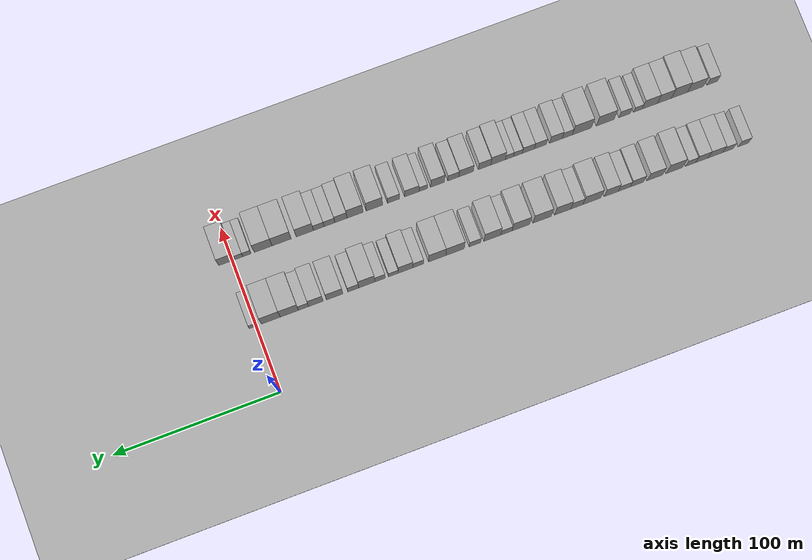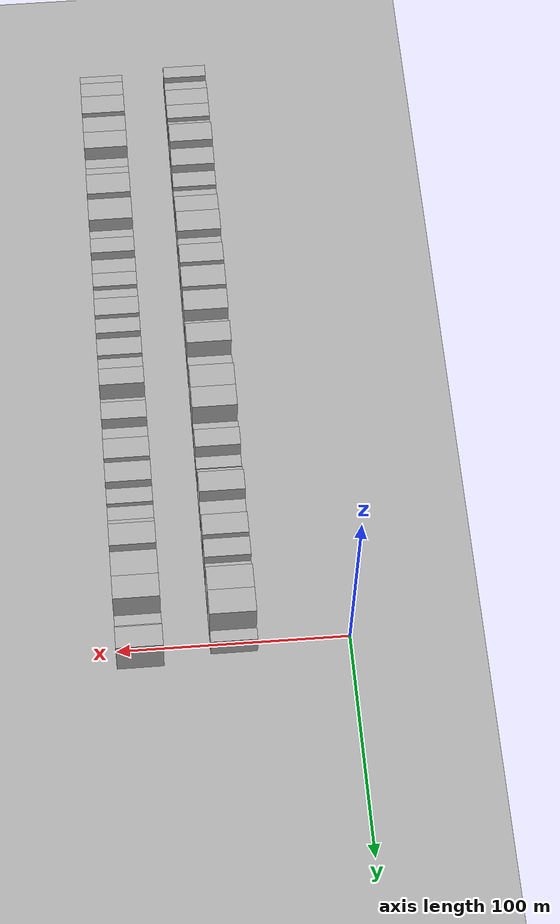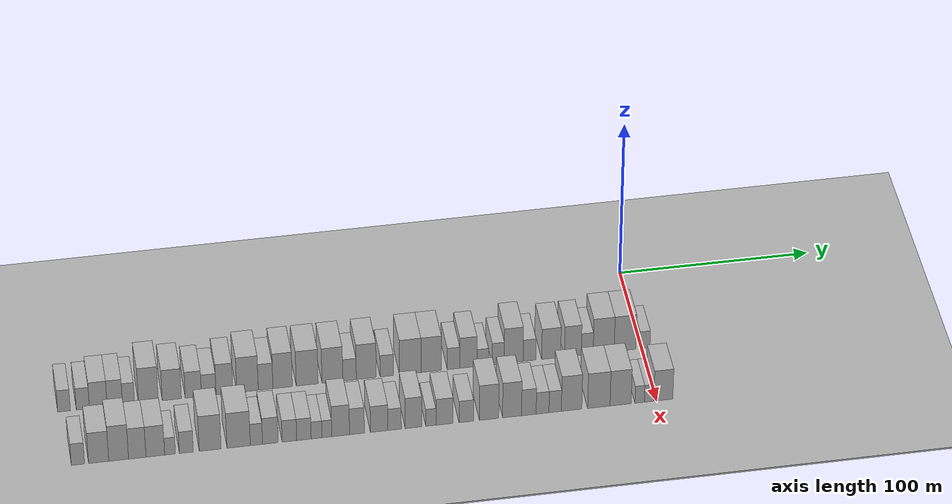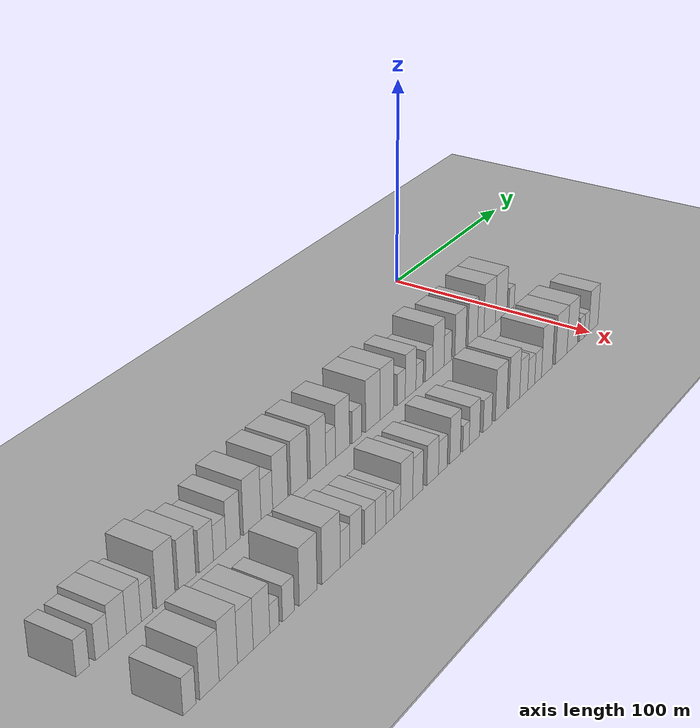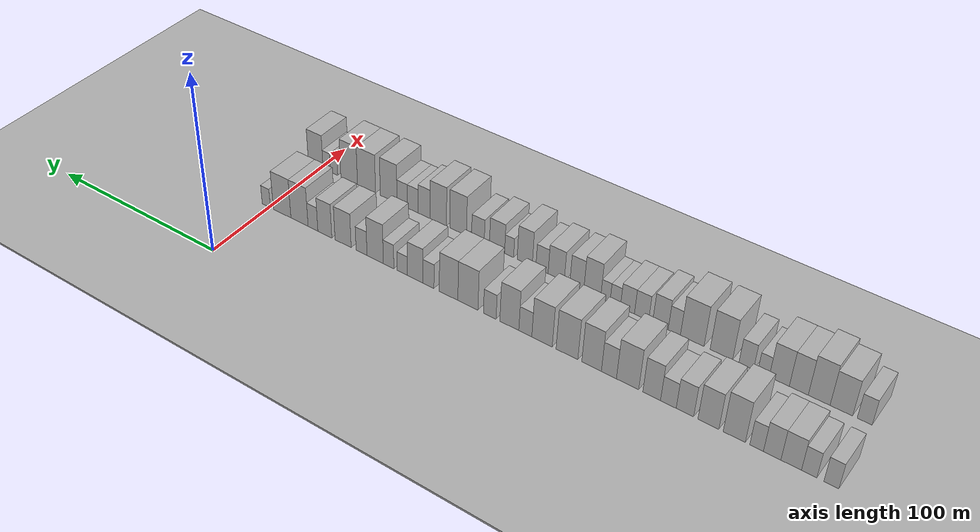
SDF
<sdf version="1.6">
 <world name="default">
  <include><name>ground_plane_1</name><uri>model://HANNAS_ground_plane</uri></include>
  <include>
   <name>ground_plane_2</name>
   <uri>model://HANNAS_ground_plane</uri>
   <pose>100 0 0  0 0 0</pose>
  </include>
  <model name="building_1">
   <static>1</static>
   <pose>50.0000 -296.7926 0 0.000000 0.000000 0.000000</pose>
   <link name="link">
    <pose>0 0 7.50 0 0 0</pose>
    <collision name="collision"><geometry><box><size>20.0000 6.4148 15.0000</size></box></geometry></collision>
    <visual name="visual">
     <cast_shadows>0</cast_shadows>
     <geometry><box><size>20.0000 6.4148 15.0000</size></box></geometry>
     <material>
      <script>
       <uri>model://HANNAS_wall/materials/scripts</uri>
       <uri>model://HANNAS_wall/materials/textures</uri>
       <name>vrc/HANNAS_wall</name>
      </script>
     </material>
    </visual>
   </link>
  </model>
  <model name="building_2">
   <static>1</static>
   <pose>50.0000 -287.2635 0 0.000000 0.000000 0.000000</pose>
   <link name="link">
    <pose>0 0 7.50 0 0 0</pose>
    <collision name="collision"><geometry><box><size>20.0000 6.6434 15.0000</size></box></geometry></collision>
    <visual name="visual">
     <cast_shadows>0</cast_shadows>
     <geometry><box><size>20.0000 6.6434 15.0000</size></box></geometry>
     <material>
      <script>
       <uri>model://HANNAS_wall/materials/scripts</uri>
       <uri>model://HANNAS_wall/materials/textures</uri>
       <name>vrc/HANNAS_wall</name>
      </script>
     </material>
    </visual>
   </link>
  </model>
  <model name="building_3">
   <static>1</static>
   <pose>50.0000 -279.4545 0 0.000000 0.000000 0.000000</pose>
   <link name="link">
    <pose>0 0 9.00 0 0 0</pose>
    <collision name="collision"><geometry><box><size>20.0000 8.9747 18.0000</size></box></geometry></collision>
    <visual name="visual">
     <cast_shadows>0</cast_shadows>
     <geometry><box><size>20.0000 8.9747 18.0000</size></box></geometry>
     <material>
      <script>
       <uri>model://HANNAS_wall/materials/scripts</uri>
       <uri>model://HANNAS_wall/materials/textures</uri>
       <name>vrc/HANNAS_wall</name>
      </script>
     </material>
    </visual>
   </link>
  </model>
  <model name="building_4">
   <static>1</static>
   <pose>50.0000 -271.0788 0 0.000000 0.000000 0.000000</pose>
   <link name="link">
    <pose>0 0 9.00 0 0 0</pose>
    <collision name="collision"><geometry><box><size>20.0000 7.7766 18.0000</size></box></geometry></collision>
    <visual name="visual">
     <cast_shadows>0</cast_shadows>
     <geometry><box><size>20.0000 7.7766 18.0000</size></box></geometry>
     <material>
      <script>
       <uri>model://HANNAS_wall/materials/scripts</uri>
       <uri>model://HANNAS_wall/materials/textures</uri>
       <name>vrc/HANNAS_wall</name>
      </script>
     </material>
    </visual>
   </link>
  </model>
  <model name="building_5">
   <static>1</static>
   <pose>50.0000 -264.1244 0 0.000000 0.000000 0.000000</pose>
   <link name="link">
    <pose>0 0 7.50 0 0 0</pose>
    <collision name="collision"><geometry><box><size>20.0000 6.1322 15.0000</size></box></geometry></collision>
    <visual name="visual">
     <cast_shadows>0</cast_shadows>
     <geometry><box><size>20.0000 6.1322 15.0000</size></box></geometry>
     <material>
      <script>
       <uri>model://HANNAS_wall/materials/scripts</uri>
       <uri>model://HANNAS_wall/materials/textures</uri>
       <name>vrc/HANNAS_wall</name>
      </script>
     </material>
    </visual>
   </link>
  </model>
  <model name="building_6">
   <static>1</static>
   <pose>50.0000 -254.0193 0 0.000000 0.000000 0.000000</pose>
   <link name="link">
    <pose>0 0 12.00 0 0 0</pose>
    <collision name="collision"><geometry><box><size>20.0000 10.0782 24.0000</size></box></geometry></collision>
    <visual name="visual">
     <cast_shadows>0</cast_shadows>
     <geometry><box><size>20.0000 10.0782 24.0000</size></box></geometry>
     <material>
      <script>
       <uri>model://HANNAS_wall/materials/scripts</uri>
       <uri>model://HANNAS_wall/materials/textures</uri>
       <name>vrc/HANNAS_wall</name>
      </script>
     </material>
    </visual>
   </link>
  </model>
  <model name="building_7">
   <static>1</static>
   <pose>50.0000 -242.1282 0 0.000000 0.000000 0.000000</pose>
   <link name="link">
    <pose>0 0 10.50 0 0 0</pose>
    <collision name="collision"><geometry><box><size>20.0000 9.7040 21.0000</size></box></geometry></collision>
    <visual name="visual">
     <cast_shadows>0</cast_shadows>
     <geometry><box><size>20.0000 9.7040 21.0000</size></box></geometry>
     <material>
      <script>
       <uri>model://HANNAS_wall/materials/scripts</uri>
       <uri>model://HANNAS_wall/materials/textures</uri>
       <name>vrc/HANNAS_wall</name>
      </script>
     </material>
    </visual>
   </link>
  </model>
  <model name="building_8">
   <static>1</static>
   <pose>50.0000 -231.1623 0 0.000000 0.000000 0.000000</pose>
   <link name="link">
    <pose>0 0 9.00 0 0 0</pose>
    <collision name="collision"><geometry><box><size>20.0000 8.2278 18.0000</size></box></geometry></collision>
    <visual name="visual">
     <cast_shadows>0</cast_shadows>
     <geometry><box><size>20.0000 8.2278 18.0000</size></box></geometry>
     <material>
      <script>
       <uri>model://HANNAS_wall/materials/scripts</uri>
       <uri>model://HANNAS_wall/materials/textures</uri>
       <name>vrc/HANNAS_wall</name>
      </script>
     </material>
    </visual>
   </link>
  </model>
  <model name="building_9">
   <static>1</static>
   <pose>50.0000 -223.3064 0 0.000000 0.000000 0.000000</pose>
   <link name="link">
    <pose>0 0 7.50 0 0 0</pose>
    <collision name="collision"><geometry><box><size>20.0000 7.4841 15.0000</size></box></geometry></collision>
    <visual name="visual">
     <cast_shadows>0</cast_shadows>
     <geometry><box><size>20.0000 7.4841 15.0000</size></box></geometry>
     <material>
      <script>
       <uri>model://HANNAS_wall/materials/scripts</uri>
       <uri>model://HANNAS_wall/materials/textures</uri>
       <name>vrc/HANNAS_wall</name>
      </script>
     </material>
    </visual>
   </link>
  </model>
  <model name="building_10">
   <static>1</static>
   <pose>50.0000 -215.2852 0 0.000000 0.000000 0.000000</pose>
   <link name="link">
    <pose>0 0 10.50 0 0 0</pose>
    <collision name="collision"><geometry><box><size>20.0000 8.5582 21.0000</size></box></geometry></collision>
    <visual name="visual">
     <cast_shadows>0</cast_shadows>
     <geometry><box><size>20.0000 8.5582 21.0000</size></box></geometry>
     <material>
      <script>
       <uri>model://HANNAS_wall/materials/scripts</uri>
       <uri>model://HANNAS_wall/materials/textures</uri>
       <name>vrc/HANNAS_wall</name>
      </script>
     </material>
    </visual>
   </link>
  </model>
  <model name="building_11">
   <static>1</static>
   <pose>50.0000 -203.5275 0 0.000000 0.000000 0.000000</pose>
   <link name="link">
    <pose>0 0 12.00 0 0 0</pose>
    <collision name="collision"><geometry><box><size>20.0000 10.9573 24.0000</size></box></geometry></collision>
    <visual name="visual">
     <cast_shadows>0</cast_shadows>
     <geometry><box><size>20.0000 10.9573 24.0000</size></box></geometry>
     <material>
      <script>
       <uri>model://HANNAS_wall/materials/scripts</uri>
       <uri>model://HANNAS_wall/materials/textures</uri>
       <name>vrc/HANNAS_wall</name>
      </script>
     </material>
    </visual>
   </link>
  </model>
  <model name="building_12">
   <static>1</static>
   <pose>50.0000 -194.2931 0 0.000000 0.000000 0.000000</pose>
   <link name="link">
    <pose>0 0 9.00 0 0 0</pose>
    <collision name="collision"><geometry><box><size>20.0000 7.5116 18.0000</size></box></geometry></collision>
    <visual name="visual">
     <cast_shadows>0</cast_shadows>
     <geometry><box><size>20.0000 7.5116 18.0000</size></box></geometry>
     <material>
      <script>
       <uri>model://HANNAS_wall/materials/scripts</uri>
       <uri>model://HANNAS_wall/materials/textures</uri>
       <name>vrc/HANNAS_wall</name>
      </script>
     </material>
    </visual>
   </link>
  </model>
  <model name="building_13">
   <static>1</static>
   <pose>50.0000 -185.5815 0 0.000000 0.000000 0.000000</pose>
   <link name="link">
    <pose>0 0 12.00 0 0 0</pose>
    <collision name="collision"><geometry><box><size>20.0000 9.9117 24.0000</size></box></geometry></collision>
    <visual name="visual">
     <cast_shadows>0</cast_shadows>
     <geometry><box><size>20.0000 9.9117 24.0000</size></box></geometry>
     <material>
      <script>
       <uri>model://HANNAS_wall/materials/scripts</uri>
       <uri>model://HANNAS_wall/materials/textures</uri>
       <name>vrc/HANNAS_wall</name>
      </script>
     </material>
    </visual>
   </link>
  </model>
  <model name="building_14">
   <static>1</static>
   <pose>50.0000 -173.0200 0 0.000000 0.000000 0.000000</pose>
   <link name="link">
    <pose>0 0 12.00 0 0 0</pose>
    <collision name="collision"><geometry><box><size>20.0000 11.2113 24.0000</size></box></geometry></collision>
    <visual name="visual">
     <cast_shadows>0</cast_shadows>
     <geometry><box><size>20.0000 11.2113 24.0000</size></box></geometry>
     <material>
      <script>
       <uri>model://HANNAS_wall/materials/scripts</uri>
       <uri>model://HANNAS_wall/materials/textures</uri>
       <name>vrc/HANNAS_wall</name>
      </script>
     </material>
    </visual>
   </link>
  </model>
  <model name="building_15">
   <static>1</static>
   <pose>50.0000 -160.0728 0 0.000000 0.000000 0.000000</pose>
   <link name="link">
    <pose>0 0 12.00 0 0 0</pose>
    <collision name="collision"><geometry><box><size>20.0000 10.6831 24.0000</size></box></geometry></collision>
    <visual name="visual">
     <cast_shadows>0</cast_shadows>
     <geometry><box><size>20.0000 10.6831 24.0000</size></box></geometry>
     <material>
      <script>
       <uri>model://HANNAS_wall/materials/scripts</uri>
       <uri>model://HANNAS_wall/materials/textures</uri>
       <name>vrc/HANNAS_wall</name>
      </script>
     </material>
    </visual>
   </link>
  </model>
  <model name="building_16">
   <static>1</static>
   <pose>50.0000 -151.2729 0 0.000000 0.000000 0.000000</pose>
   <link name="link">
    <pose>0 0 7.50 0 0 0</pose>
    <collision name="collision"><geometry><box><size>20.0000 6.9169 15.0000</size></box></geometry></collision>
    <visual name="visual">
     <cast_shadows>0</cast_shadows>
     <geometry><box><size>20.0000 6.9169 15.0000</size></box></geometry>
     <material>
      <script>
       <uri>model://HANNAS_wall/materials/scripts</uri>
       <uri>model://HANNAS_wall/materials/textures</uri>
       <name>vrc/HANNAS_wall</name>
      </script>
     </material>
    </visual>
   </link>
  </model>
  <model name="building_17">
   <static>1</static>
   <pose>50.0000 -142.6974 0 0.000000 0.000000 0.000000</pose>
   <link name="link">
    <pose>0 0 12.00 0 0 0</pose>
    <collision name="collision"><geometry><box><size>20.0000 10.2342 24.0000</size></box></geometry></collision>
    <visual name="visual">
     <cast_shadows>0</cast_shadows>
     <geometry><box><size>20.0000 10.2342 24.0000</size></box></geometry>
     <material>
      <script>
       <uri>model://HANNAS_wall/materials/scripts</uri>
       <uri>model://HANNAS_wall/materials/textures</uri>
       <name>vrc/HANNAS_wall</name>
      </script>
     </material>
    </visual>
   </link>
  </model>
  <model name="building_18">
   <static>1</static>
   <pose>50.0000 -132.1075 0 0.000000 0.000000 0.000000</pose>
   <link name="link">
    <pose>0 0 7.50 0 0 0</pose>
    <collision name="collision"><geometry><box><size>20.0000 6.9456 15.0000</size></box></geometry></collision>
    <visual name="visual">
     <cast_shadows>0</cast_shadows>
     <geometry><box><size>20.0000 6.9456 15.0000</size></box></geometry>
     <material>
      <script>
       <uri>model://HANNAS_wall/materials/scripts</uri>
       <uri>model://HANNAS_wall/materials/textures</uri>
       <name>vrc/HANNAS_wall</name>
      </script>
     </material>
    </visual>
   </link>
  </model>
  <model name="building_19">
   <static>1</static>
   <pose>50.0000 -120.0522 0 0.000000 0.000000 0.000000</pose>
   <link name="link">
    <pose>0 0 12.00 0 0 0</pose>
    <collision name="collision"><geometry><box><size>20.0000 11.1651 24.0000</size></box></geometry></collision>
    <visual name="visual">
     <cast_shadows>0</cast_shadows>
     <geometry><box><size>20.0000 11.1651 24.0000</size></box></geometry>
     <material>
      <script>
       <uri>model://HANNAS_wall/materials/scripts</uri>
       <uri>model://HANNAS_wall/materials/textures</uri>
       <name>vrc/HANNAS_wall</name>
      </script>
     </material>
    </visual>
   </link>
  </model>
  <model name="building_20">
   <static>1</static>
   <pose>50.0000 -109.2274 0 0.000000 0.000000 0.000000</pose>
   <link name="link">
    <pose>0 0 12.00 0 0 0</pose>
    <collision name="collision"><geometry><box><size>20.0000 10.4845 24.0000</size></box></geometry></collision>
    <visual name="visual">
     <cast_shadows>0</cast_shadows>
     <geometry><box><size>20.0000 10.4845 24.0000</size></box></geometry>
     <material>
      <script>
       <uri>model://HANNAS_wall/materials/scripts</uri>
       <uri>model://HANNAS_wall/materials/textures</uri>
       <name>vrc/HANNAS_wall</name>
      </script>
     </material>
    </visual>
   </link>
  </model>
  <model name="building_21">
   <static>1</static>
   <pose>50.0000 -97.7396 0 0.000000 0.000000 0.000000</pose>
   <link name="link">
    <pose>0 0 7.50 0 0 0</pose>
    <collision name="collision"><geometry><box><size>20.0000 6.4911 15.0000</size></box></geometry></collision>
    <visual name="visual">
     <cast_shadows>0</cast_shadows>
     <geometry><box><size>20.0000 6.4911 15.0000</size></box></geometry>
     <material>
      <script>
       <uri>model://HANNAS_wall/materials/scripts</uri>
       <uri>model://HANNAS_wall/materials/textures</uri>
       <name>vrc/HANNAS_wall</name>
      </script>
     </material>
    </visual>
   </link>
  </model>
  <model name="building_22">
   <static>1</static>
   <pose>50.0000 -90.0830 0 0.000000 0.000000 0.000000</pose>
   <link name="link">
    <pose>0 0 10.50 0 0 0</pose>
    <collision name="collision"><geometry><box><size>20.0000 8.8221 21.0000</size></box></geometry></collision>
    <visual name="visual">
     <cast_shadows>0</cast_shadows>
     <geometry><box><size>20.0000 8.8221 21.0000</size></box></geometry>
     <material>
      <script>
       <uri>model://HANNAS_wall/materials/scripts</uri>
       <uri>model://HANNAS_wall/materials/textures</uri>
       <name>vrc/HANNAS_wall</name>
      </script>
     </material>
    </visual>
   </link>
  </model>
  <model name="building_23">
   <static>1</static>
   <pose>50.0000 -82.6973 0 0.000000 0.000000 0.000000</pose>
   <link name="link">
    <pose>0 0 6.00 0 0 0</pose>
    <collision name="collision"><geometry><box><size>20.0000 5.9494 12.0000</size></box></geometry></collision>
    <visual name="visual">
     <cast_shadows>0</cast_shadows>
     <geometry><box><size>20.0000 5.9494 12.0000</size></box></geometry>
     <material>
      <script>
       <uri>model://HANNAS_wall/materials/scripts</uri>
       <uri>model://HANNAS_wall/materials/textures</uri>
       <name>vrc/HANNAS_wall</name>
      </script>
     </material>
    </visual>
   </link>
  </model>
  <model name="building_24">
   <static>1</static>
   <pose>50.0000 -74.6171 0 0.000000 0.000000 0.000000</pose>
   <link name="link">
    <pose>0 0 7.50 0 0 0</pose>
    <collision name="collision"><geometry><box><size>20.0000 6.2110 15.0000</size></box></geometry></collision>
    <visual name="visual">
     <cast_shadows>0</cast_shadows>
     <geometry><box><size>20.0000 6.2110 15.0000</size></box></geometry>
     <material>
      <script>
       <uri>model://HANNAS_wall/materials/scripts</uri>
       <uri>model://HANNAS_wall/materials/textures</uri>
       <name>vrc/HANNAS_wall</name>
      </script>
     </material>
    </visual>
   </link>
  </model>
  <model name="building_25">
   <static>1</static>
   <pose>50.0000 -66.6309 0 0.000000 0.000000 0.000000</pose>
   <link name="link">
    <pose>0 0 12.00 0 0 0</pose>
    <collision name="collision"><geometry><box><size>20.0000 9.7614 24.0000</size></box></geometry></collision>
    <visual name="visual">
     <cast_shadows>0</cast_shadows>
     <geometry><box><size>20.0000 9.7614 24.0000</size></box></geometry>
     <material>
      <script>
       <uri>model://HANNAS_wall/materials/scripts</uri>
       <uri>model://HANNAS_wall/materials/textures</uri>
       <name>vrc/HANNAS_wall</name>
      </script>
     </material>
    </visual>
   </link>
  </model>
  <model name="building_26">
   <static>1</static>
   <pose>50.0000 -58.4410 0 0.000000 0.000000 0.000000</pose>
   <link name="link">
    <pose>0 0 7.50 0 0 0</pose>
    <collision name="collision"><geometry><box><size>20.0000 6.6184 15.0000</size></box></geometry></collision>
    <visual name="visual">
     <cast_shadows>0</cast_shadows>
     <geometry><box><size>20.0000 6.6184 15.0000</size></box></geometry>
     <material>
      <script>
       <uri>model://HANNAS_wall/materials/scripts</uri>
       <uri>model://HANNAS_wall/materials/textures</uri>
       <name>vrc/HANNAS_wall</name>
      </script>
     </material>
    </visual>
   </link>
  </model>
  <model name="building_27">
   <static>1</static>
   <pose>50.0000 -47.1898 0 0.000000 0.000000 0.000000</pose>
   <link name="link">
    <pose>0 0 10.50 0 0 0</pose>
    <collision name="collision"><geometry><box><size>20.0000 9.8840 21.0000</size></box></geometry></collision>
    <visual name="visual">
     <cast_shadows>0</cast_shadows>
     <geometry><box><size>20.0000 9.8840 21.0000</size></box></geometry>
     <material>
      <script>
       <uri>model://HANNAS_wall/materials/scripts</uri>
       <uri>model://HANNAS_wall/materials/textures</uri>
       <name>vrc/HANNAS_wall</name>
      </script>
     </material>
    </visual>
   </link>
  </model>
  <model name="building_28">
   <static>1</static>
   <pose>50.0000 -35.8952 0 0.000000 0.000000 0.000000</pose>
   <link name="link">
    <pose>0 0 10.50 0 0 0</pose>
    <collision name="collision"><geometry><box><size>20.0000 8.7052 21.0000</size></box></geometry></collision>
    <visual name="visual">
     <cast_shadows>0</cast_shadows>
     <geometry><box><size>20.0000 8.7052 21.0000</size></box></geometry>
     <material>
      <script>
       <uri>model://HANNAS_wall/materials/scripts</uri>
       <uri>model://HANNAS_wall/materials/textures</uri>
       <name>vrc/HANNAS_wall</name>
      </script>
     </material>
    </visual>
   </link>
  </model>
  <model name="building_29">
   <static>1</static>
   <pose>50.0000 -28.4702 0 0.000000 0.000000 0.000000</pose>
   <link name="link">
    <pose>0 0 7.50 0 0 0</pose>
    <collision name="collision"><geometry><box><size>20.0000 6.1448 15.0000</size></box></geometry></collision>
    <visual name="visual">
     <cast_shadows>0</cast_shadows>
     <geometry><box><size>20.0000 6.1448 15.0000</size></box></geometry>
     <material>
      <script>
       <uri>model://HANNAS_wall/materials/scripts</uri>
       <uri>model://HANNAS_wall/materials/textures</uri>
       <name>vrc/HANNAS_wall</name>
      </script>
     </material>
    </visual>
   </link>
  </model>
  <model name="building_30">
   <static>1</static>
   <pose>50.0000 -19.9293 0 0.000000 0.000000 0.000000</pose>
   <link name="link">
    <pose>0 0 12.00 0 0 0</pose>
    <collision name="collision"><geometry><box><size>20.0000 10.9371 24.0000</size></box></geometry></collision>
    <visual name="visual">
     <cast_shadows>0</cast_shadows>
     <geometry><box><size>20.0000 10.9371 24.0000</size></box></geometry>
     <material>
      <script>
       <uri>model://HANNAS_wall/materials/scripts</uri>
       <uri>model://HANNAS_wall/materials/textures</uri>
       <name>vrc/HANNAS_wall</name>
      </script>
     </material>
    </visual>
   </link>
  </model>
  <model name="building_31">
   <static>1</static>
   <pose>50.0000 -8.8116 0 0.000000 0.000000 0.000000</pose>
   <link name="link">
    <pose>0 0 12.00 0 0 0</pose>
    <collision name="collision"><geometry><box><size>20.0000 11.2982 24.0000</size></box></geometry></collision>
    <visual name="visual">
     <cast_shadows>0</cast_shadows>
     <geometry><box><size>20.0000 11.2982 24.0000</size></box></geometry>
     <material>
      <script>
       <uri>model://HANNAS_wall/materials/scripts</uri>
       <uri>model://HANNAS_wall/materials/textures</uri>
       <name>vrc/HANNAS_wall</name>
      </script>
     </material>
    </visual>
   </link>
  </model>
  <model name="building_32">
   <static>1</static>
   <pose>50.0000 1.5083 0 0.000000 0.000000 0.000000</pose>
   <link name="link">
    <pose>0 0 6.00 0 0 0</pose>
    <collision name="collision"><geometry><box><size>20.0000 5.3416 12.0000</size></box></geometry></collision>
    <visual name="visual">
     <cast_shadows>0</cast_shadows>
     <geometry><box><size>20.0000 5.3416 12.0000</size></box></geometry>
     <material>
      <script>
       <uri>model://HANNAS_wall/materials/scripts</uri>
       <uri>model://HANNAS_wall/materials/textures</uri>
       <name>vrc/HANNAS_wall</name>
      </script>
     </material>
    </visual>
   </link>
  </model>
  <model name="building_69">
   <static>1</static>
   <pose>90.0000 -293.6930 0 0.000000 0.000000 0.000000</pose>
   <link name="link">
    <pose>0 0 7.50 0 0 0</pose>
    <collision name="collision"><geometry><box><size>20.0000 6.6141 15.0000</size></box></geometry></collision>
    <visual name="visual">
     <cast_shadows>0</cast_shadows>
     <geometry><box><size>20.0000 6.6141 15.0000</size></box></geometry>
     <material>
      <script>
       <uri>model://HANNAS_wall/materials/scripts</uri>
       <uri>model://HANNAS_wall/materials/textures</uri>
       <name>vrc/HANNAS_wall</name>
      </script>
     </material>
    </visual>
   </link>
  </model>
  <model name="building_70">
   <static>1</static>
   <pose>90.0000 -283.3321 0 0.000000 0.000000 0.000000</pose>
   <link name="link">
    <pose>0 0 10.50 0 0 0</pose>
    <collision name="collision"><geometry><box><size>20.0000 10.1076 21.0000</size></box></geometry></collision>
    <visual name="visual">
     <cast_shadows>0</cast_shadows>
     <geometry><box><size>20.0000 10.1076 21.0000</size></box></geometry>
     <material>
      <script>
       <uri>model://HANNAS_wall/materials/scripts</uri>
       <uri>model://HANNAS_wall/materials/textures</uri>
       <name>vrc/HANNAS_wall</name>
      </script>
     </material>
    </visual>
   </link>
  </model>
  <model name="building_71">
   <static>1</static>
   <pose>90.0000 -273.3265 0 0.000000 0.000000 0.000000</pose>
   <link name="link">
    <pose>0 0 12.00 0 0 0</pose>
    <collision name="collision"><geometry><box><size>20.0000 9.9035 24.0000</size></box></geometry></collision>
    <visual name="visual">
     <cast_shadows>0</cast_shadows>
     <geometry><box><size>20.0000 9.9035 24.0000</size></box></geometry>
     <material>
      <script>
       <uri>model://HANNAS_wall/materials/scripts</uri>
       <uri>model://HANNAS_wall/materials/textures</uri>
       <name>vrc/HANNAS_wall</name>
      </script>
     </material>
    </visual>
   </link>
  </model>
  <model name="building_72">
   <static>1</static>
   <pose>90.0000 -264.0152 0 0.000000 0.000000 0.000000</pose>
   <link name="link">
    <pose>0 0 10.50 0 0 0</pose>
    <collision name="collision"><geometry><box><size>20.0000 8.7190 21.0000</size></box></geometry></collision>
    <visual name="visual">
     <cast_shadows>0</cast_shadows>
     <geometry><box><size>20.0000 8.7190 21.0000</size></box></geometry>
     <material>
      <script>
       <uri>model://HANNAS_wall/materials/scripts</uri>
       <uri>model://HANNAS_wall/materials/textures</uri>
       <name>vrc/HANNAS_wall</name>
      </script>
     </material>
    </visual>
   </link>
  </model>
  <model name="building_73">
   <static>1</static>
   <pose>90.0000 -254.9657 0 0.000000 0.000000 0.000000</pose>
   <link name="link">
    <pose>0 0 10.50 0 0 0</pose>
    <collision name="collision"><geometry><box><size>20.0000 9.3799 21.0000</size></box></geometry></collision>
    <visual name="visual">
     <cast_shadows>0</cast_shadows>
     <geometry><box><size>20.0000 9.3799 21.0000</size></box></geometry>
     <material>
      <script>
       <uri>model://HANNAS_wall/materials/scripts</uri>
       <uri>model://HANNAS_wall/materials/textures</uri>
       <name>vrc/HANNAS_wall</name>
      </script>
     </material>
    </visual>
   </link>
  </model>
  <model name="building_74">
   <static>1</static>
   <pose>90.0000 -247.5824 0 0.000000 0.000000 0.000000</pose>
   <link name="link">
    <pose>0 0 6.00 0 0 0</pose>
    <collision name="collision"><geometry><box><size>20.0000 5.3867 12.0000</size></box></geometry></collision>
    <visual name="visual">
     <cast_shadows>0</cast_shadows>
     <geometry><box><size>20.0000 5.3867 12.0000</size></box></geometry>
     <material>
      <script>
       <uri>model://HANNAS_wall/materials/scripts</uri>
       <uri>model://HANNAS_wall/materials/textures</uri>
       <name>vrc/HANNAS_wall</name>
      </script>
     </material>
    </visual>
   </link>
  </model>
  <model name="building_75">
   <static>1</static>
   <pose>90.0000 -239.3895 0 0.000000 0.000000 0.000000</pose>
   <link name="link">
    <pose>0 0 7.50 0 0 0</pose>
    <collision name="collision"><geometry><box><size>20.0000 6.9991 15.0000</size></box></geometry></collision>
    <visual name="visual">
     <cast_shadows>0</cast_shadows>
     <geometry><box><size>20.0000 6.9991 15.0000</size></box></geometry>
     <material>
      <script>
       <uri>model://HANNAS_wall/materials/scripts</uri>
       <uri>model://HANNAS_wall/materials/textures</uri>
       <name>vrc/HANNAS_wall</name>
      </script>
     </material>
    </visual>
   </link>
  </model>
  <model name="building_76">
   <static>1</static>
   <pose>90.0000 -227.4014 0 0.000000 0.000000 0.000000</pose>
   <link name="link">
    <pose>0 0 12.00 0 0 0</pose>
    <collision name="collision"><geometry><box><size>20.0000 10.9771 24.0000</size></box></geometry></collision>
    <visual name="visual">
     <cast_shadows>0</cast_shadows>
     <geometry><box><size>20.0000 10.9771 24.0000</size></box></geometry>
     <material>
      <script>
       <uri>model://HANNAS_wall/materials/scripts</uri>
       <uri>model://HANNAS_wall/materials/textures</uri>
       <name>vrc/HANNAS_wall</name>
      </script>
     </material>
    </visual>
   </link>
  </model>
  <model name="building_77">
   <static>1</static>
   <pose>90.0000 -213.0505 0 0.000000 0.000000 0.000000</pose>
   <link name="link">
    <pose>0 0 12.00 0 0 0</pose>
    <collision name="collision"><geometry><box><size>20.0000 11.7247 24.0000</size></box></geometry></collision>
    <visual name="visual">
     <cast_shadows>0</cast_shadows>
     <geometry><box><size>20.0000 11.7247 24.0000</size></box></geometry>
     <material>
      <script>
       <uri>model://HANNAS_wall/materials/scripts</uri>
       <uri>model://HANNAS_wall/materials/textures</uri>
       <name>vrc/HANNAS_wall</name>
      </script>
     </material>
    </visual>
   </link>
  </model>
  <model name="building_78">
   <static>1</static>
   <pose>90.0000 -204.1069 0 0.000000 0.000000 0.000000</pose>
   <link name="link">
    <pose>0 0 7.50 0 0 0</pose>
    <collision name="collision"><geometry><box><size>20.0000 6.1624 15.0000</size></box></geometry></collision>
    <visual name="visual">
     <cast_shadows>0</cast_shadows>
     <geometry><box><size>20.0000 6.1624 15.0000</size></box></geometry>
     <material>
      <script>
       <uri>model://HANNAS_wall/materials/scripts</uri>
       <uri>model://HANNAS_wall/materials/textures</uri>
       <name>vrc/HANNAS_wall</name>
      </script>
     </material>
    </visual>
   </link>
  </model>
  <model name="building_79">
   <static>1</static>
   <pose>90.0000 -197.0779 0 0.000000 0.000000 0.000000</pose>
   <link name="link">
    <pose>0 0 9.00 0 0 0</pose>
    <collision name="collision"><geometry><box><size>20.0000 7.8958 18.0000</size></box></geometry></collision>
    <visual name="visual">
     <cast_shadows>0</cast_shadows>
     <geometry><box><size>20.0000 7.8958 18.0000</size></box></geometry>
     <material>
      <script>
       <uri>model://HANNAS_wall/materials/scripts</uri>
       <uri>model://HANNAS_wall/materials/textures</uri>
       <name>vrc/HANNAS_wall</name>
      </script>
     </material>
    </visual>
   </link>
  </model>
  <model name="building_80">
   <static>1</static>
   <pose>90.0000 -187.4497 0 0.000000 0.000000 0.000000</pose>
   <link name="link">
    <pose>0 0 7.50 0 0 0</pose>
    <collision name="collision"><geometry><box><size>20.0000 7.3606 15.0000</size></box></geometry></collision>
    <visual name="visual">
     <cast_shadows>0</cast_shadows>
     <geometry><box><size>20.0000 7.3606 15.0000</size></box></geometry>
     <material>
      <script>
       <uri>model://HANNAS_wall/materials/scripts</uri>
       <uri>model://HANNAS_wall/materials/textures</uri>
       <name>vrc/HANNAS_wall</name>
      </script>
     </material>
    </visual>
   </link>
  </model>
  <model name="building_81">
   <static>1</static>
   <pose>90.0000 -180.1134 0 0.000000 0.000000 0.000000</pose>
   <link name="link">
    <pose>0 0 7.50 0 0 0</pose>
    <collision name="collision"><geometry><box><size>20.0000 7.3119 15.0000</size></box></geometry></collision>
    <visual name="visual">
     <cast_shadows>0</cast_shadows>
     <geometry><box><size>20.0000 7.3119 15.0000</size></box></geometry>
     <material>
      <script>
       <uri>model://HANNAS_wall/materials/scripts</uri>
       <uri>model://HANNAS_wall/materials/textures</uri>
       <name>vrc/HANNAS_wall</name>
      </script>
     </material>
    </visual>
   </link>
  </model>
  <model name="building_82">
   <static>1</static>
   <pose>90.0000 -173.7316 0 0.000000 0.000000 0.000000</pose>
   <link name="link">
    <pose>0 0 6.00 0 0 0</pose>
    <collision name="collision"><geometry><box><size>20.0000 5.4518 12.0000</size></box></geometry></collision>
    <visual name="visual">
     <cast_shadows>0</cast_shadows>
     <geometry><box><size>20.0000 5.4518 12.0000</size></box></geometry>
     <material>
      <script>
       <uri>model://HANNAS_wall/materials/scripts</uri>
       <uri>model://HANNAS_wall/materials/textures</uri>
       <name>vrc/HANNAS_wall</name>
      </script>
     </material>
    </visual>
   </link>
  </model>
  <model name="building_83">
   <static>1</static>
   <pose>90.0000 -168.5272 0 0.000000 0.000000 0.000000</pose>
   <link name="link">
    <pose>0 0 6.00 0 0 0</pose>
    <collision name="collision"><geometry><box><size>20.0000 4.9570 12.0000</size></box></geometry></collision>
    <visual name="visual">
     <cast_shadows>0</cast_shadows>
     <geometry><box><size>20.0000 4.9570 12.0000</size></box></geometry>
     <material>
      <script>
       <uri>model://HANNAS_wall/materials/scripts</uri>
       <uri>model://HANNAS_wall/materials/textures</uri>
       <name>vrc/HANNAS_wall</name>
      </script>
     </material>
    </visual>
   </link>
  </model>
  <model name="building_84">
   <static>1</static>
   <pose>90.0000 -161.5450 0 0.000000 0.000000 0.000000</pose>
   <link name="link">
    <pose>0 0 10.50 0 0 0</pose>
    <collision name="collision"><geometry><box><size>20.0000 9.0074 21.0000</size></box></geometry></collision>
    <visual name="visual">
     <cast_shadows>0</cast_shadows>
     <geometry><box><size>20.0000 9.0074 21.0000</size></box></geometry>
     <material>
      <script>
       <uri>model://HANNAS_wall/materials/scripts</uri>
       <uri>model://HANNAS_wall/materials/textures</uri>
       <name>vrc/HANNAS_wall</name>
      </script>
     </material>
    </visual>
   </link>
  </model>
  <model name="building_85">
   <static>1</static>
   <pose>90.0000 -153.2507 0 0.000000 0.000000 0.000000</pose>
   <link name="link">
    <pose>0 0 9.00 0 0 0</pose>
    <collision name="collision"><geometry><box><size>20.0000 7.5812 18.0000</size></box></geometry></collision>
    <visual name="visual">
     <cast_shadows>0</cast_shadows>
     <geometry><box><size>20.0000 7.5812 18.0000</size></box></geometry>
     <material>
      <script>
       <uri>model://HANNAS_wall/materials/scripts</uri>
       <uri>model://HANNAS_wall/materials/textures</uri>
       <name>vrc/HANNAS_wall</name>
      </script>
     </material>
    </visual>
   </link>
  </model>
  <model name="building_86">
   <static>1</static>
   <pose>90.0000 -142.0244 0 0.000000 0.000000 0.000000</pose>
   <link name="link">
    <pose>0 0 9.00 0 0 0</pose>
    <collision name="collision"><geometry><box><size>20.0000 8.8716 18.0000</size></box></geometry></collision>
    <visual name="visual">
     <cast_shadows>0</cast_shadows>
     <geometry><box><size>20.0000 8.8716 18.0000</size></box></geometry>
     <material>
      <script>
       <uri>model://HANNAS_wall/materials/scripts</uri>
       <uri>model://HANNAS_wall/materials/textures</uri>
       <name>vrc/HANNAS_wall</name>
      </script>
     </material>
    </visual>
   </link>
  </model>
  <model name="building_87">
   <static>1</static>
   <pose>90.0000 -134.1826 0 0.000000 0.000000 0.000000</pose>
   <link name="link">
    <pose>0 0 7.50 0 0 0</pose>
    <collision name="collision"><geometry><box><size>20.0000 6.8118 15.0000</size></box></geometry></collision>
    <visual name="visual">
     <cast_shadows>0</cast_shadows>
     <geometry><box><size>20.0000 6.8118 15.0000</size></box></geometry>
     <material>
      <script>
       <uri>model://HANNAS_wall/materials/scripts</uri>
       <uri>model://HANNAS_wall/materials/textures</uri>
       <name>vrc/HANNAS_wall</name>
      </script>
     </material>
    </visual>
   </link>
  </model>
  <model name="building_88">
   <static>1</static>
   <pose>90.0000 -124.5405 0 0.000000 0.000000 0.000000</pose>
   <link name="link">
    <pose>0 0 10.50 0 0 0</pose>
    <collision name="collision"><geometry><box><size>20.0000 8.4725 21.0000</size></box></geometry></collision>
    <visual name="visual">
     <cast_shadows>0</cast_shadows>
     <geometry><box><size>20.0000 8.4725 21.0000</size></box></geometry>
     <material>
      <script>
       <uri>model://HANNAS_wall/materials/scripts</uri>
       <uri>model://HANNAS_wall/materials/textures</uri>
       <name>vrc/HANNAS_wall</name>
      </script>
     </material>
    </visual>
   </link>
  </model>
  <model name="building_89">
   <static>1</static>
   <pose>90.0000 -115.7239 0 0.000000 0.000000 0.000000</pose>
   <link name="link">
    <pose>0 0 6.00 0 0 0</pose>
    <collision name="collision"><geometry><box><size>20.0000 5.1607 12.0000</size></box></geometry></collision>
    <visual name="visual">
     <cast_shadows>0</cast_shadows>
     <geometry><box><size>20.0000 5.1607 12.0000</size></box></geometry>
     <material>
      <script>
       <uri>model://HANNAS_wall/materials/scripts</uri>
       <uri>model://HANNAS_wall/materials/textures</uri>
       <name>vrc/HANNAS_wall</name>
      </script>
     </material>
    </visual>
   </link>
  </model>
  <model name="building_90">
   <static>1</static>
   <pose>90.0000 -108.7787 0 0.000000 0.000000 0.000000</pose>
   <link name="link">
    <pose>0 0 9.00 0 0 0</pose>
    <collision name="collision"><geometry><box><size>20.0000 8.7297 18.0000</size></box></geometry></collision>
    <visual name="visual">
     <cast_shadows>0</cast_shadows>
     <geometry><box><size>20.0000 8.7297 18.0000</size></box></geometry>
     <material>
      <script>
       <uri>model://HANNAS_wall/materials/scripts</uri>
       <uri>model://HANNAS_wall/materials/textures</uri>
       <name>vrc/HANNAS_wall</name>
      </script>
     </material>
    </visual>
   </link>
  </model>
  <model name="building_91">
   <static>1</static>
   <pose>90.0000 -97.7153 0 0.000000 0.000000 0.000000</pose>
   <link name="link">
    <pose>0 0 7.50 0 0 0</pose>
    <collision name="collision"><geometry><box><size>20.0000 7.3970 15.0000</size></box></geometry></collision>
    <visual name="visual">
     <cast_shadows>0</cast_shadows>
     <geometry><box><size>20.0000 7.3970 15.0000</size></box></geometry>
     <material>
      <script>
       <uri>model://HANNAS_wall/materials/scripts</uri>
       <uri>model://HANNAS_wall/materials/textures</uri>
       <name>vrc/HANNAS_wall</name>
      </script>
     </material>
    </visual>
   </link>
  </model>
  <model name="building_92">
   <static>1</static>
   <pose>90.0000 -86.0694 0 0.000000 0.000000 0.000000</pose>
   <link name="link">
    <pose>0 0 12.00 0 0 0</pose>
    <collision name="collision"><geometry><box><size>20.0000 9.8949 24.0000</size></box></geometry></collision>
    <visual name="visual">
     <cast_shadows>0</cast_shadows>
     <geometry><box><size>20.0000 9.8949 24.0000</size></box></geometry>
     <material>
      <script>
       <uri>model://HANNAS_wall/materials/scripts</uri>
       <uri>model://HANNAS_wall/materials/textures</uri>
       <name>vrc/HANNAS_wall</name>
      </script>
     </material>
    </visual>
   </link>
  </model>
  <model name="building_93">
   <static>1</static>
   <pose>90.0000 -74.2831 0 0.000000 0.000000 0.000000</pose>
   <link name="link">
    <pose>0 0 12.00 0 0 0</pose>
    <collision name="collision"><geometry><box><size>20.0000 9.6777 24.0000</size></box></geometry></collision>
    <visual name="visual">
     <cast_shadows>0</cast_shadows>
     <geometry><box><size>20.0000 9.6777 24.0000</size></box></geometry>
     <material>
      <script>
       <uri>model://HANNAS_wall/materials/scripts</uri>
       <uri>model://HANNAS_wall/materials/textures</uri>
       <name>vrc/HANNAS_wall</name>
      </script>
     </material>
    </visual>
   </link>
  </model>
  <model name="building_94">
   <static>1</static>
   <pose>90.0000 -65.7197 0 0.000000 0.000000 0.000000</pose>
   <link name="link">
    <pose>0 0 9.00 0 0 0</pose>
    <collision name="collision"><geometry><box><size>20.0000 7.4491 18.0000</size></box></geometry></collision>
    <visual name="visual">
     <cast_shadows>0</cast_shadows>
     <geometry><box><size>20.0000 7.4491 18.0000</size></box></geometry>
     <material>
      <script>
       <uri>model://HANNAS_wall/materials/scripts</uri>
       <uri>model://HANNAS_wall/materials/textures</uri>
       <name>vrc/HANNAS_wall</name>
      </script>
     </material>
    </visual>
   </link>
  </model>
  <model name="building_95">
   <static>1</static>
   <pose>90.0000 -58.7277 0 0.000000 0.000000 0.000000</pose>
   <link name="link">
    <pose>0 0 7.50 0 0 0</pose>
    <collision name="collision"><geometry><box><size>20.0000 6.5348 15.0000</size></box></geometry></collision>
    <visual name="visual">
     <cast_shadows>0</cast_shadows>
     <geometry><box><size>20.0000 6.5348 15.0000</size></box></geometry>
     <material>
      <script>
       <uri>model://HANNAS_wall/materials/scripts</uri>
       <uri>model://HANNAS_wall/materials/textures</uri>
       <name>vrc/HANNAS_wall</name>
      </script>
     </material>
    </visual>
   </link>
  </model>
  <model name="building_96">
   <static>1</static>
   <pose>90.0000 -52.2620 0 0.000000 0.000000 0.000000</pose>
   <link name="link">
    <pose>0 0 7.50 0 0 0</pose>
    <collision name="collision"><geometry><box><size>20.0000 6.3967 15.0000</size></box></geometry></collision>
    <visual name="visual">
     <cast_shadows>0</cast_shadows>
     <geometry><box><size>20.0000 6.3967 15.0000</size></box></geometry>
     <material>
      <script>
       <uri>model://HANNAS_wall/materials/scripts</uri>
       <uri>model://HANNAS_wall/materials/textures</uri>
       <name>vrc/HANNAS_wall</name>
      </script>
     </material>
    </visual>
   </link>
  </model>
  <model name="building_97">
   <static>1</static>
   <pose>90.0000 -43.8292 0 0.000000 0.000000 0.000000</pose>
   <link name="link">
    <pose>0 0 12.00 0 0 0</pose>
    <collision name="collision"><geometry><box><size>20.0000 10.4689 24.0000</size></box></geometry></collision>
    <visual name="visual">
     <cast_shadows>0</cast_shadows>
     <geometry><box><size>20.0000 10.4689 24.0000</size></box></geometry>
     <material>
      <script>
       <uri>model://HANNAS_wall/materials/scripts</uri>
       <uri>model://HANNAS_wall/materials/textures</uri>
       <name>vrc/HANNAS_wall</name>
      </script>
     </material>
    </visual>
   </link>
  </model>
  <model name="building_98">
   <static>1</static>
   <pose>90.0000 -29.8407 0 0.000000 0.000000 0.000000</pose>
   <link name="link">
    <pose>0 0 12.00 0 0 0</pose>
    <collision name="collision"><geometry><box><size>20.0000 11.5080 24.0000</size></box></geometry></collision>
    <visual name="visual">
     <cast_shadows>0</cast_shadows>
     <geometry><box><size>20.0000 11.5080 24.0000</size></box></geometry>
     <material>
      <script>
       <uri>model://HANNAS_wall/materials/scripts</uri>
       <uri>model://HANNAS_wall/materials/textures</uri>
       <name>vrc/HANNAS_wall</name>
      </script>
     </material>
    </visual>
   </link>
  </model>
  <model name="building_99">
   <static>1</static>
   <pose>90.0000 -18.6864 0 0.000000 0.000000 0.000000</pose>
   <link name="link">
    <pose>0 0 12.00 0 0 0</pose>
    <collision name="collision"><geometry><box><size>20.0000 10.8007 24.0000</size></box></geometry></collision>
    <visual name="visual">
     <cast_shadows>0</cast_shadows>
     <geometry><box><size>20.0000 10.8007 24.0000</size></box></geometry>
     <material>
      <script>
       <uri>model://HANNAS_wall/materials/scripts</uri>
       <uri>model://HANNAS_wall/materials/textures</uri>
       <name>vrc/HANNAS_wall</name>
      </script>
     </material>
    </visual>
   </link>
  </model>
  <model name="building_100">
   <static>1</static>
   <pose>90.0000 -8.8683 0 0.000000 0.000000 0.000000</pose>
   <link name="link">
    <pose>0 0 6.00 0 0 0</pose>
    <collision name="collision"><geometry><box><size>20.0000 4.8355 12.0000</size></box></geometry></collision>
    <visual name="visual">
     <cast_shadows>0</cast_shadows>
     <geometry><box><size>20.0000 4.8355 12.0000</size></box></geometry>
     <material>
      <script>
       <uri>model://HANNAS_wall/materials/scripts</uri>
       <uri>model://HANNAS_wall/materials/textures</uri>
       <name>vrc/HANNAS_wall</name>
      </script>
     </material>
    </visual>
   </link>
  </model>
  <model name="building_101">
   <static>1</static>
   <pose>90.0000 -4.0435 0 0.000000 0.000000 0.000000</pose>
   <link name="link">
    <pose>0 0 6.00 0 0 0</pose>
    <collision name="collision"><geometry><box><size>20.0000 4.8141 12.0000</size></box></geometry></collision>
    <visual name="visual">
     <cast_shadows>0</cast_shadows>
     <geometry><box><size>20.0000 4.8141 12.0000</size></box></geometry>
     <material>
      <script>
       <uri>model://HANNAS_wall/materials/scripts</uri>
       <uri>model://HANNAS_wall/materials/textures</uri>
       <name>vrc/HANNAS_wall</name>
      </script>
     </material>
    </visual>
   </link>
  </model>
  <model name="building_102">
   <static>1</static>
   <pose>90.0000 3.2635 0 0.000000 0.000000 0.000000</pose>
   <link name="link">
    <pose>0 0 10.50 0 0 0</pose>
    <collision name="collision"><geometry><box><size>20.0000 9.7999 21.0000</size></box></geometry></collision>
    <visual name="visual">
     <cast_shadows>0</cast_shadows>
     <geometry><box><size>20.0000 9.7999 21.0000</size></box></geometry>
     <material>
      <script>
       <uri>model://HANNAS_wall/materials/scripts</uri>
       <uri>model://HANNAS_wall/materials/textures</uri>
       <name>vrc/HANNAS_wall</name>
      </script>
     </material>
    </visual>
   </link>
  </model>
 </world>
</sdf>
